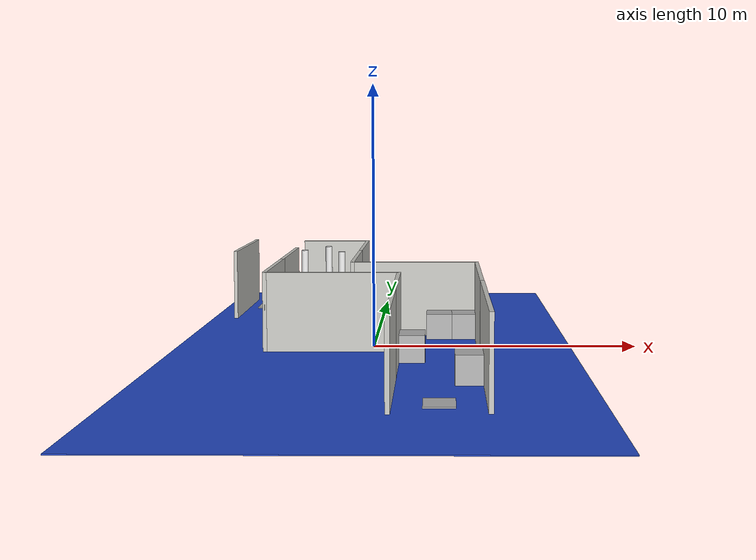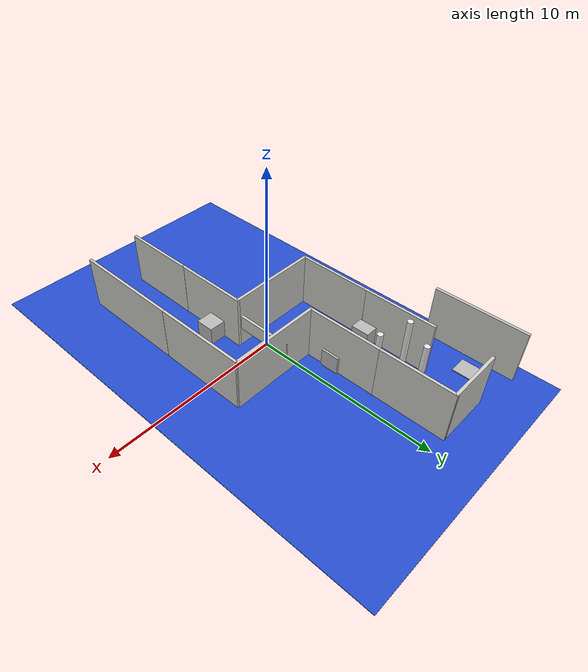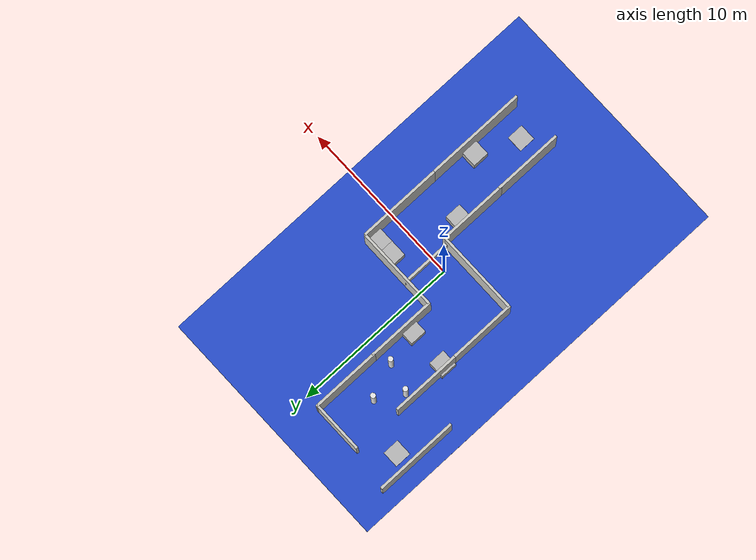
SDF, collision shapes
<?xml version="1.0" ?>
<sdf version="1.5">
  <model name="Acourse_new">

<!--wall and wall imgs-->

    <include>
      <name>wall1</name>
      <pose>4 -0.5 0 0 0 1.57</pose>
      <uri>model://5m_wall_new</uri>
    </include>
    <include>
      <name>wall2</name>
      <pose>4 -6 0 0 0 1.57</pose>
      <uri>model://6m_wall_new</uri>
    </include>

    <include>
      <name>wall3</name>
      <pose>1 -3 0 0 0 1.57</pose>
      <uri>model://4m_wall_new</uri>
    </include>
    <include>
      <name>wall4</name>
      <pose>1 -7 0 0 0 1.57</pose>
      <uri>model://4m_wall_new</uri>
    </include>

    <include>
      <name>wall5</name>
      <pose>-1.5 -1 0 0 0 0</pose>
      <uri>model://5m_wall_new</uri>
    </include>
    <include>
      <name>ww1</name>
      <pose>-6.5 8 0 0 0 1.5708</pose>
      <uri>model://5m_wall_new</uri>
    </include>

    <include>
      <name>wall6</name>
      <pose>-2.5 10 0 0 0 0</pose>
      <uri>model://3m_wall_new</uri>
    </include>

    <include>
      <name>wall7</name>
      <pose>1.5 2 0 0 0 0</pose>
      <uri>model://5m_wall_new</uri>
    </include>

    <include>
      <name>wall8</name>
      <pose>-1 8 0 0 0 1.57</pose>
      <uri>model://4m_wall_new</uri>
    </include>
    <include>
      <name>wall9</name>
      <pose>-1 4 0 0 0 1.57</pose>
      <uri>model://4m_wall_new</uri>
    </include>

    <include>
      <name>wall10</name>
      <pose>-4 5 0 0 0 1.57</pose>
      <uri>model://4m_wall_new</uri>
    </include>
    <include>
      <name>wall11</name>
      <pose>-4 1 0 0 0 1.57</pose>
      <uri>model://4m_wall_new</uri>
    </include>

<!--floors-->
    <include>
      <name>floor1</name>
      <pose>0 0 0 0 0 0</pose>
      <uri>model://blue_ground_new</uri>
    </include>
    <include>
      <name>home1</name>
      <pose>-5.5 8.5 0.05 0 0 0</pose>
      <uri>model://homing_point</uri>
    </include>
    <include>
      <name>home2</name>
      <pose>2.5 -8 0.05 0 0 0</pose>
      <uri>model://homing_point</uri>
    </include>

<!--boxes-->
    <include>
      <name>box1</name>
      <pose>3.5 -5.5 0.05 0 0 0</pose>
      <uri>model://basic_box_new</uri>
    </include>

    <include>
      <name>box2</name>
      <pose>1.5 -2.5 0.05 0 0 0</pose>
      <uri>model://basic_box_new</uri>
    </include>

    <include>
      <name>box3</name>
      <pose>3.5 1.5 0.05 0 0 0</pose>
      <uri>model://basic_box_new</uri>
    </include>
    <include>
      <name>box4</name>
      <pose>2.5 1.5 0.05 0 0 0</pose>
      <uri>model://basic_box_new</uri>
    </include>

    <include>
      <name>box5</name>
      <pose>-1.3 3.5 0.05 0 0 0</pose>
      <uri>model://basic_box_new</uri>
    </include>
    <include>
      <name>box6</name>
      <pose>-3.7 3.5 0.05 0 0 0</pose>
      <uri>model://basic_box_new</uri>
    </include>

<!--cylinders-->
    <include>
      <name>Bcylinder1</name>
      <pose>-1.8 5.5 1.5 0 0 0</pose>
      <uri>model://Bcylinder_new</uri>
    </include>
    <include>
      <name>Bcylinder2</name>
      <pose>-3.5 6 1.5 0 0 0</pose>
      <uri>model://Bcylinder_new</uri>
    </include>
    <include>
      <name>Bcylinder3</name>
      <pose>-2.6 7.5 1.5 0 0 0</pose>
      <uri>model://Bcylinder_new</uri>
    </include>

<!--4 obstacle -->
    <include>
      <name>4wall1</name>
      <pose>0.8 0.5 0.0 0 0 1.57</pose>
      <uri>model://3m_low_wall</uri>
    </include>
  </model>
</sdf>

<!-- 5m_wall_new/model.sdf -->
<sdf version='1.6'>
  <model name='5m_wall_new'>
    <link name='Wall_0'>
      <collision name='5m_wall_newc'>
        <geometry>
          <box>
            <size>5 0.15 3</size>
          </box>
        </geometry>
        <pose frame=''>0 0 1.5 0 -0 0</pose>
      </collision>
      <visual name='5m_wall_newv'>
        <pose frame=''>0 0 1.5 0 -0 0</pose>
        <geometry>
          <box>
            <size>5 0.15 3</size>
          </box>
        </geometry>
        <material>
          <script>
            <uri>file://media/materials/scripts/gazebo.material</uri>
            <name>Gazebo/CeilingTiled</name>
          </script>
          <ambient>1 1 1 1</ambient>
        </material>
        <meta>
          <layer>0</layer>
        </meta>
      </visual>
      <pose frame=''>0 0 0 0 -0 0</pose>
    </link>
    <static>1</static>
  </model>
</sdf>

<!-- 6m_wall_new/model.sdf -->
<sdf version='1.6'>
  <model name='6m_wall_new'>
    <link name='Wall_0'>
      <collision name='6m_wall_newc'>
        <geometry>
          <box>
            <size>6 0.15 3</size>
          </box>
        </geometry>
        <pose frame=''>0 0 1.5 0 -0 0</pose>
      </collision>
      <visual name='6m_wall_newv'>
        <pose frame=''>0 0 1.5 0 -0 0</pose>
        <geometry>
          <box>
            <size>6 0.15 3</size>
          </box>
        </geometry>
        <material>
          <script>
            <uri>file://media/materials/scripts/gazebo.material</uri>
            <name>Gazebo/CeilingTiled</name>
          </script>
          <ambient>1 1 1 1</ambient>
        </material>
        <meta>
          <layer>0</layer>
        </meta>
      </visual>
      <pose frame=''>0 0 0 0 -0 0</pose>
    </link>
    <static>1</static>
  </model>
</sdf>

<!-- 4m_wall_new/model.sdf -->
<sdf version='1.6'>
  <model name='4m_wall_new'>
    <link name='Wall_0'>
      <collision name='4m_wall_newc'>
        <geometry>
          <box>
            <size>4.15 0.15 3</size>
          </box>
        </geometry>
        <pose frame=''>0 0 1.5 0 -0 0</pose>
      </collision>
      <visual name='4m_wall_newv'>
        <pose frame=''>0 0 1.5 0 -0 0</pose>
        <geometry>
          <box>
            <size>4.15 0.15 3</size>
          </box>
        </geometry>
        <material>
          <script>
            <uri>file://media/materials/scripts/gazebo.material</uri>
            <name>Gazebo/CeilingTiled</name>
          </script>
          <ambient>1 1 1 1</ambient>
        </material>
        <meta>
          <layer>0</layer>
        </meta>
      </visual>
      <pose frame=''>0 0 0 0 -0 0</pose>
    </link>
    <static>1</static>
  </model>
</sdf>

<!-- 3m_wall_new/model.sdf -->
<sdf version='1.6'>
  <model name='3m_wall_new'>
    <pose frame=''>1.5 0 0 0 -0 0</pose>
    <link name='Wall_45'>
      <collision name='3m_wall_newc'>
        <geometry>
          <box>
            <size>3.15 0.15 3</size>
          </box>
        </geometry>
        <pose frame=''>0 0 1.5 0 -0 0</pose>
      </collision>
      <visual name='3m_wall_newv'>
        <pose frame=''>0 0 1.5 0 -0 0</pose>
        <geometry>
          <box>
            <size>3.15 0.15 3</size>
          </box>
        </geometry>
        <material>
          <script>
            <uri>file://media/materials/scripts/gazebo.material</uri>
            <name>Gazebo/CeilingTiled</name>
          </script>
          <ambient>1 1 1 1</ambient>
        </material>
        <meta>
          <layer>0</layer>
        </meta>
      </visual>
      <pose frame=''>0 0 0 0 -0 0</pose>
    </link>
    <static>1</static>
  </model>
</sdf>

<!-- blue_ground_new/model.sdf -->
<sdf version="1.5">
  <model name="blue_ground_new">
    <static>true</static>
    <link name="blue_ground_new">
      <collision name="blue_ground_newc">
        <geometry>
          <box>
            <size>15 25 0.03</size>
          </box>
        </geometry>
      </collision>
      <visual name="blue_ground_newv">
        <geometry>
          <box>
            <size>15 25 0.03</size>
          </box>
        </geometry>
        <material>
          <script>
            <uri>model://blue_ground/materials/scripts</uri>
            <uri>model://blue_ground/materials/textures</uri>
            <name>vrc/blue_ground</name>
          </script>
        </material>
      </visual>
    </link>

  </model>
</sdf>

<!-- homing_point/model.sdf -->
<sdf version='1.5'>
<model name='homing_point'>
<static>true</static>
<link name="link">
  <pose frame=''>0 0 0 0 0 0</pose>
  <collision name="collision">
    <geometry>
      <box>
        <size>1 1 0.05</size>
      </box>
    </geometry>
  </collision>

  <visual name="visual">
    <geometry>
      <box>
        <size>1 1 .05</size>
      </box>
    </geometry>
    <material>
      <script>
        <uri>model://homing_point/materials/scripts</uri>
        <uri>model://homing_point/materials/textures</uri>
        <name>vrc/homing_point</name>
      </script>
    </material>
  </visual>

</link>
</model>
</sdf>

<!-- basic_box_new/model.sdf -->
<sdf version="1.6">
  <model name="basic_box_new">

    <link name="link">
      <inertial>
        <mass>2</mass>
        <inertia>
          <ixx>0.083</ixx>       <!-- for a box: ixx = 0.083 * mass * (y*y + z*z) -->
          <ixy>0.0</ixy>         <!-- for a box: ixy = 0 -->
          <ixz>0.0</ixz>         <!-- for a box: ixz = 0 -->
          <iyy>0.083</iyy>       <!-- for a box: iyy = 0.083 * mass * (x*x + z*z) -->
          <iyz>0.0</iyz>         <!-- for a box: iyz = 0 -->
          <izz>0.083</izz>       <!-- for a box: izz = 0.083 * mass * (x*x + y*y) -->
        </inertia>
      </inertial>
      <collision name="collision">
        <pose>0 0 0.5 0 0 0</pose>
        <geometry>
          <box>
            <size>1 1 1</size>
          </box>
        </geometry>
      </collision>
      <visual name="visual">
        <pose>0 0 0 0 0 0</pose>
        <geometry>
          <mesh>
            <uri>model://basic_box_new/meshes/basic_box.dae</uri>
            <scale>2.55 2.55 2.55</scale>
          </mesh>
        </geometry>
      </visual>
    </link>

    <link name="link2">
      <inertial>
        <mass>2</mass>
        <inertia>
          <ixx>0.083</ixx>       <!-- for a box: ixx = 0.083 * mass * (y*y + z*z) -->
          <ixy>0.0</ixy>         <!-- for a box: ixy = 0 -->
          <ixz>0.0</ixz>         <!-- for a box: ixz = 0 -->
          <iyy>0.083</iyy>       <!-- for a box: iyy = 0.083 * mass * (x*x + z*z) -->
          <iyz>0.0</iyz>         <!-- for a box: iyz = 0 -->
          <izz>0.083</izz>       <!-- for a box: izz = 0.083 * mass * (x*x + y*y) -->
        </inertia>
      </inertial>
      <collision name="collision">
        <pose>0 0 0.5 0 0 0</pose>
        <geometry>
          <box>
            <size>1 1 1</size>
          </box>
        </geometry>
      </collision>
      <visual name="visual">
        <pose>0 0 1 0 0 0</pose>
        <geometry>
          <mesh>
            <uri>model://basic_box_new/meshes/basic_box.dae</uri>
            <scale>2.55 2.55 2.55</scale>
          </mesh>
        </geometry>
      </visual>
    </link>

    <link name="link3">
      <inertial>
        <mass>2</mass>
        <inertia>
          <ixx>0.083</ixx>       <!-- for a box: ixx = 0.083 * mass * (y*y + z*z) -->
          <ixy>0.0</ixy>         <!-- for a box: ixy = 0 -->
          <ixz>0.0</ixz>         <!-- for a box: ixz = 0 -->
          <iyy>0.083</iyy>       <!-- for a box: iyy = 0.083 * mass * (x*x + z*z) -->
          <iyz>0.0</iyz>         <!-- for a box: iyz = 0 -->
          <izz>0.083</izz>       <!-- for a box: izz = 0.083 * mass * (x*x + y*y) -->
        </inertia>
      </inertial>
      <collision name="collision">
        <pose>0 0 0.5 0 0 0</pose>
        <geometry>
          <box>
            <size>1 1 1</size>
          </box>
        </geometry>
      </collision>
      <visual name="visual">
        <pose>0 0 2 0 0 0</pose>
        <geometry>
          <mesh>
            <uri>model://basic_box_new/meshes/basic_box.dae</uri>
            <scale>2.55 2.55 2.55</scale>
          </mesh>
        </geometry>
      </visual>
    </link>
  </model>
</sdf>

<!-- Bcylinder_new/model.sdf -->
<sdf version="1.6">
    <model name="Bcylinder_new">
      <link name='link'>
        <inertial>
          <mass>1</mass>
          <inertia>
            <ixx>0.145833</ixx>
            <ixy>0</ixy>
            <ixz>0</ixz>
            <iyy>0.145833</iyy>
            <iyz>0</iyz>
            <izz>0.125</izz>
          </inertia>
        </inertial>
        <collision name='collision'>
          <geometry>
            <cylinder>
              <radius>0.15</radius>
              <length>3</length>
            </cylinder>
          </geometry>
        </collision>
        <visual name='visual'>
          <geometry>
            <cylinder>
              <radius>0.15</radius>
              <length>3</length>
            </cylinder>
          </geometry>
          <material>
            <script>
              <name>Gazebo/White</name>
              <uri>file://media/materials/scripts/gazebo.material</uri>
            </script>
          </material>
        </visual>
      </link>
    </model>
</sdf>

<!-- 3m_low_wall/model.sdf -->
<sdf version='1.6'>
  <model name='3m_low_wall'>
    <pose frame=''>1.5 0 0 0 -0 0</pose>
    <link name='Wall_45'>
      <collision name='Wall_45_Collision'>
        <geometry>
          <box>
            <size>3.15 0.15 0.8</size>
          </box>
        </geometry>
        <pose frame=''>0 0 1.5 0 -0 0</pose>
      </collision>
      <visual name='Wall_45_Visual'>
        <pose frame=''>0 0 1.5 0 -0 0</pose>
        <geometry>
          <box>
            <size>3.15 0.15 0.8</size>
          </box>
        </geometry>
        <material>
          <script>
            <uri>file://media/materials/scripts/gazebo.material</uri>
            <name>Gazebo/CeilingTiled</name>
          </script>
          <ambient>1 1 1 1</ambient>
        </material>
        <meta>
          <layer>0</layer>
        </meta>
      </visual>
      <pose frame=''>0 0 0 0 -0 0</pose>
    </link>
    <static>1</static>
  </model>
</sdf>
